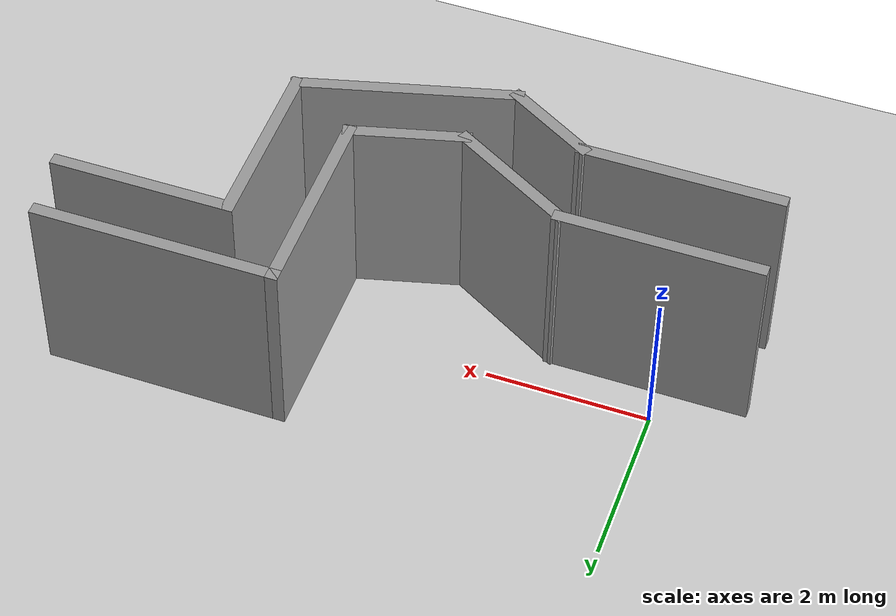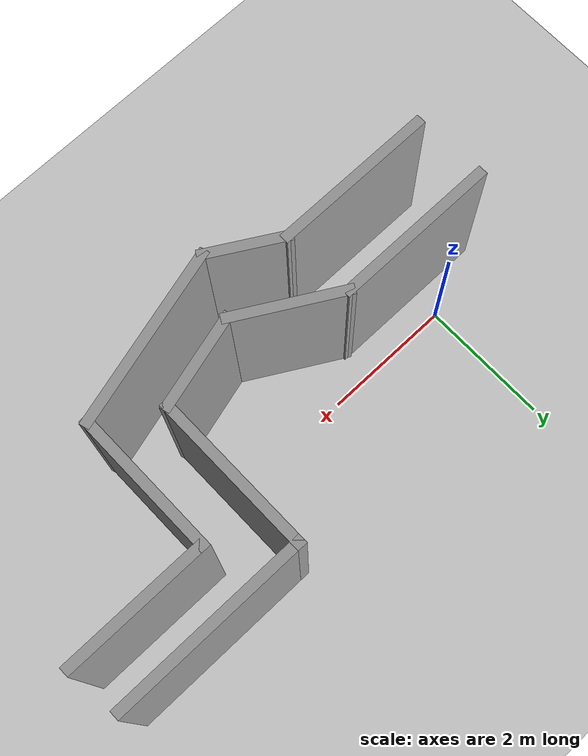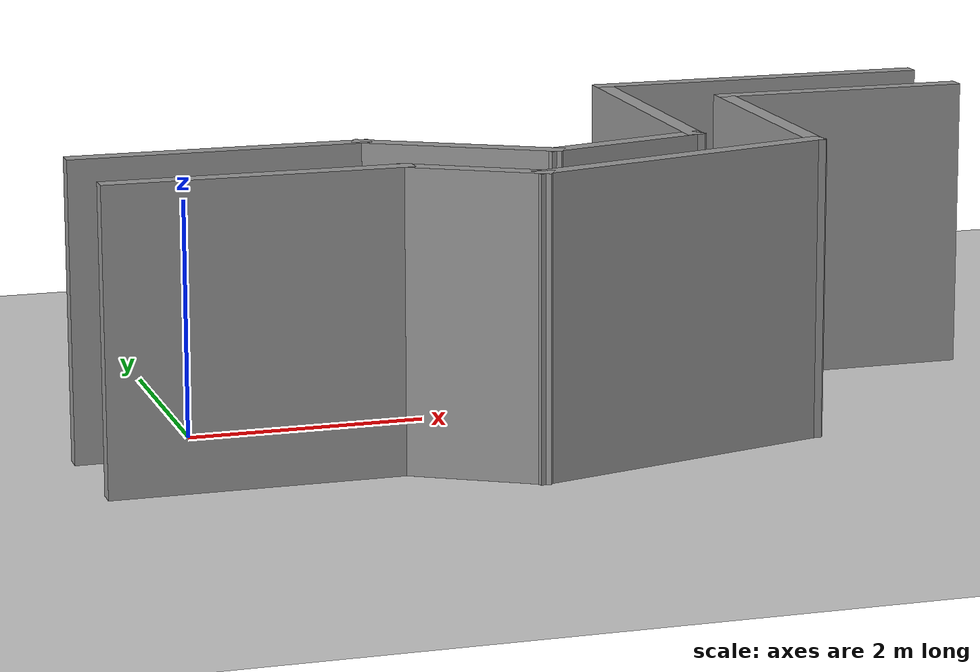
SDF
<sdf version="1.7">
 <world name="default">
  <light name="sun" type="directional">
   <pose>0 0 10 0 -0 0</pose>
   <diffuse>0.8 0.8 0.8 1</diffuse>
   <specular>0.2 0.2 0.2 1</specular>
   <attenuation>
    <range>1000</range>
    <constant>0.9</constant>
    <linear>0.01</linear>
    <quadratic>0.001</quadratic>
   </attenuation>
   <direction>-0.5 0.1 -0.9</direction>
   <spot><inner_angle>0</inner_angle><outer_angle>0</outer_angle><falloff>0</falloff></spot>
  </light>
  <model name="ground_plane">
   <static>1</static>
   <link name="link">
    <collision name="collision">
     <geometry><plane><normal>0 0 1</normal><size>100 100</size></plane></geometry>
     <surface>
      <contact><collide_bitmask>65535</collide_bitmask></contact>
      <friction><ode><mu>100</mu><mu2>50</mu2></ode></friction>
     </surface>
    </collision>
    <visual name="visual">
     <cast_shadows>0</cast_shadows>
     <geometry><plane><normal>0 0 1</normal><size>100 100</size></plane></geometry>
     <material>
      <script><uri>file://media/materials/scripts/gazebo.material</uri><name>Gazebo/Grey</name></script>
     </material>
    </visual>
   </link>
  </model>
  <gravity>0 0 -9.8</gravity>
  <magnetic_field>6e-06 2.3e-05 -4.2e-05</magnetic_field>
  <atmosphere type="adiabatic"/>
  <physics type="ode">
   <max_step_size>0.001</max_step_size>
   <real_time_factor>1</real_time_factor>
   <real_time_update_rate>1000</real_time_update_rate>
  </physics>
  <scene><ambient>0.4 0.4 0.4 1</ambient><background>0.7 0.7 0.7 1</background><shadows>1</shadows></scene>
  <audio><device>default</device></audio>
  <spherical_coordinates>
   <surface_model>EARTH_WGS84</surface_model>
   <latitude_deg>0</latitude_deg>
   <longitude_deg>0</longitude_deg>
   <elevation>0</elevation>
   <heading_deg>0</heading_deg>
  </spherical_coordinates>
  <model name="wall.world">
   <pose>3.0157 -0.389127 0 0 -0 0</pose>
   <link name="Wall_0">
    <collision name="Wall_0_Collision">
     <geometry><box><size>2.5 0.15 2.5</size></box></geometry>
     <pose>0 0 1.25 0 -0 0</pose>
    </collision>
    <visual name="Wall_0_Visual">
     <pose>0 0 1.25 0 -0 0</pose>
     <geometry><box><size>2.5 0.15 2.5</size></box></geometry>
     <material>
      <script><uri>file://media/materials/scripts/gazebo.material</uri><name>Gazebo/Grey</name></script>
      <ambient>1 1 1 1</ambient>
     </material>
     <meta><layer>0</layer></meta>
    </visual>
    <pose>-2.7607 -1.19087 0 0 -0 0</pose>
   </link>
   <link name="Wall_10">
    <collision name="Wall_10_Collision">
     <geometry><box><size>3 0.15 2.5</size></box></geometry>
     <pose>0 0 1.25 0 -0 0</pose>
    </collision>
    <visual name="Wall_10_Visual">
     <pose>0 0 1.25 0 -0 0</pose>
     <geometry><box><size>3 0.15 2.5</size></box></geometry>
     <material>
      <script><uri>file://media/materials/scripts/gazebo.material</uri><name>Gazebo/Grey</name></script>
      <ambient>1 1 1 1</ambient>
     </material>
     <meta><layer>0</layer></meta>
    </visual>
    <pose>2.46894 1.78853 0 0 -0 0</pose>
   </link>
   <link name="Wall_12">
    <collision name="Wall_12_Collision">
     <geometry><box><size>2.75 0.15 2.5</size></box></geometry>
     <pose>0 0 1.25 0 -0 0</pose>
    </collision>
    <visual name="Wall_12_Visual">
     <pose>0 0 1.25 0 -0 0</pose>
     <geometry><box><size>2.75 0.15 2.5</size></box></geometry>
     <material>
      <script><uri>file://media/materials/scripts/gazebo.material</uri><name>Gazebo/Grey</name></script>
      <ambient>1 1 1 1</ambient>
     </material>
     <meta><layer>0</layer></meta>
    </visual>
    <pose>0.64 -1.42441 0 0 -0 0.261799</pose>
   </link>
   <link name="Wall_13">
    <collision name="Wall_13_Collision">
     <geometry><box><size>2.25 0.15 2.5</size></box></geometry>
     <pose>0 0 1.25 0 -0 0</pose>
    </collision>
    <visual name="Wall_13_Visual">
     <pose>0 0 1.25 0 -0 0</pose>
     <geometry><box><size>2.25 0.15 2.5</size></box></geometry>
     <material>
      <script><uri>file://media/materials/scripts/gazebo.material</uri><name>Gazebo/Grey</name></script>
      <ambient>1 1 1 1</ambient>
     </material>
     <meta><layer>0</layer></meta>
    </visual>
    <pose>1.8957 -0.037944 0 0 -0 1.5708</pose>
   </link>
   <link name="Wall_14">
    <collision name="Wall_14_Collision">
     <geometry><box><size>2.25 0.15 2.5</size></box></geometry>
     <pose>0 0 1.25 0 -0 0</pose>
    </collision>
    <visual name="Wall_14_Visual">
     <pose>0 0 1.25 0 -0 0</pose>
     <geometry><box><size>2.25 0.15 2.5</size></box></geometry>
     <material>
      <script><uri>file://media/materials/scripts/gazebo.material</uri><name>Gazebo/Grey</name></script>
      <ambient>1 1 1 1</ambient>
     </material>
     <meta><layer>0</layer></meta>
    </visual>
    <pose>2.9457 1.01206 0 0 -0 0</pose>
   </link>
   <link name="Wall_2">
    <collision name="Wall_2_Collision">
     <geometry><box><size>1.27508 0.15 2.5</size></box></geometry>
     <pose>0 0 1.25 0 -0 0</pose>
    </collision>
    <visual name="Wall_2_Visual">
     <pose>0 0 1.25 0 -0 0</pose>
     <geometry><box><size>1.27508 0.15 2.5</size></box></geometry>
     <material>
      <script><uri>file://media/materials/scripts/gazebo.material</uri><name>Gazebo/Grey</name></script>
      <ambient>1 1 1 1</ambient>
     </material>
     <meta><layer>0</layer></meta>
    </visual>
    <pose>-1.1007 -1.47587 0 0 -0 2.61032</pose>
   </link>
   <link name="Wall_5">
    <collision name="Wall_5_Collision">
     <geometry><box><size>2.5 0.15 2.5</size></box></geometry>
     <pose>0 0 1.25 0 -0 0</pose>
    </collision>
    <visual name="Wall_5_Visual">
     <pose>0 0 1.25 0 -0 0</pose>
     <geometry><box><size>2.5 0.15 2.5</size></box></geometry>
     <material>
      <script><uri>file://media/materials/scripts/gazebo.material</uri><name>Gazebo/Grey</name></script>
      <ambient>1 1 1 1</ambient>
     </material>
     <meta><layer>0</layer></meta>
    </visual>
    <pose>-2.8207 -0.110873 0 0 -0 0</pose>
   </link>
   <link name="Wall_6">
    <collision name="Wall_6_Collision">
     <geometry><box><size>1.75 0.15 2.5</size></box></geometry>
     <pose>0 0 1.25 0 -0 0</pose>
    </collision>
    <visual name="Wall_6_Visual">
     <pose>0 0 1.25 0 -0 0</pose>
     <geometry><box><size>1.75 0.15 2.5</size></box></geometry>
     <material>
      <script><uri>file://media/materials/scripts/gazebo.material</uri><name>Gazebo/Grey</name></script>
      <ambient>1 1 1 1</ambient>
     </material>
     <meta><layer>0</layer></meta>
    </visual>
    <pose>-0.952883 -0.510873 0 0 -0 -0.523599</pose>
   </link>
   <link name="Wall_7">
    <collision name="Wall_7_Collision">
     <geometry><box><size>1.5 0.15 2.5</size></box></geometry>
     <pose>0 0 1.25 0 -0 0</pose>
    </collision>
    <visual name="Wall_7_Visual">
     <pose>0 0 1.25 0 -0 0</pose>
     <geometry><box><size>1.5 0.15 2.5</size></box></geometry>
     <material>
      <script><uri>file://media/materials/scripts/gazebo.material</uri><name>Gazebo/Grey</name></script>
      <ambient>1 1 1 1</ambient>
     </material>
     <meta><layer>0</layer></meta>
    </visual>
    <pose>0.391937 -0.73617 0 0 -0 0.261799</pose>
   </link>
   <link name="Wall_9">
    <collision name="Wall_9_Collision">
     <geometry><box><size>2.5 0.15 2.5</size></box></geometry>
     <pose>0 0 1.25 0 -0 0</pose>
    </collision>
    <visual name="Wall_9_Visual">
     <pose>0 0 1.25 0 -0 0</pose>
     <geometry><box><size>2.5 0.15 2.5</size></box></geometry>
     <material>
      <script><uri>file://media/materials/scripts/gazebo.material</uri><name>Gazebo/Grey</name></script>
      <ambient>1 1 1 1</ambient>
     </material>
     <meta><layer>0</layer></meta>
    </visual>
    <pose>1.04394 0.613533 0 0 -0 1.5708</pose>
   </link>
   <static>1</static>
  </model>
 </world>
</sdf>
